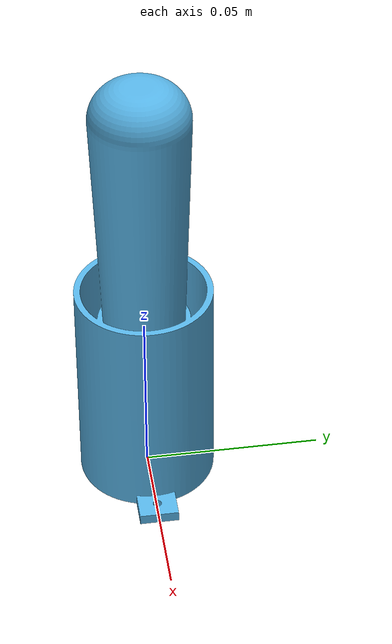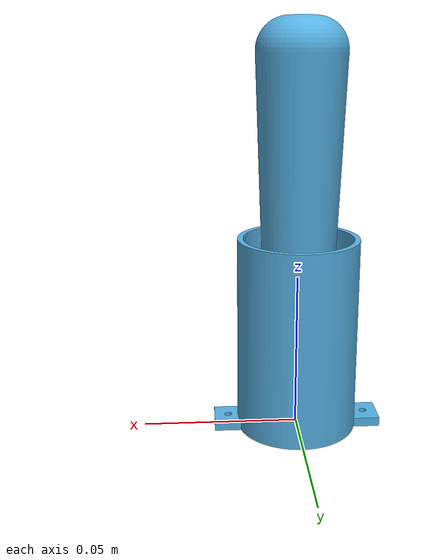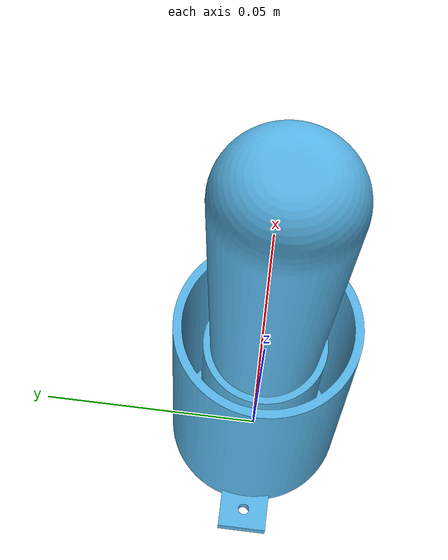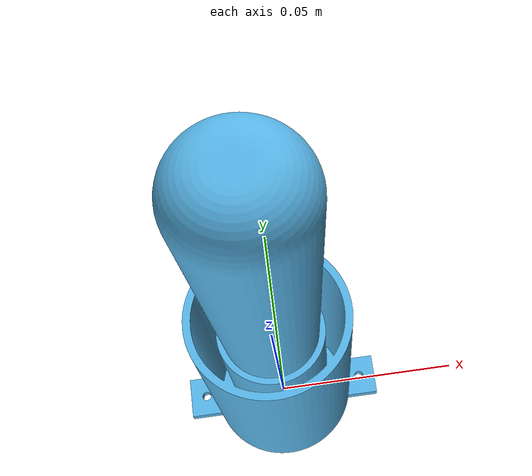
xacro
<robot name="pestle"  xmlns:xacro="http://ros.org/wiki/xacro">
  <xacro:property name="stl_file_path" value="package://kek_scene_description/mesh/jig_pestle_140.stl" />

  <link name="base_link"/>

  <joint name="pestle_joint" type="fixed">
    <parent link="base_link"/>
    <child  link="pestle_link"/>
  </joint>
  <link name="pestle_link">
    <visual>
      <geometry>
        <mesh filename="${stl_file_path}" />
      </geometry>
      <origin xyz="0 0 0" rpy="0 0 0"/>
    </visual>
  </link>

</robot>
